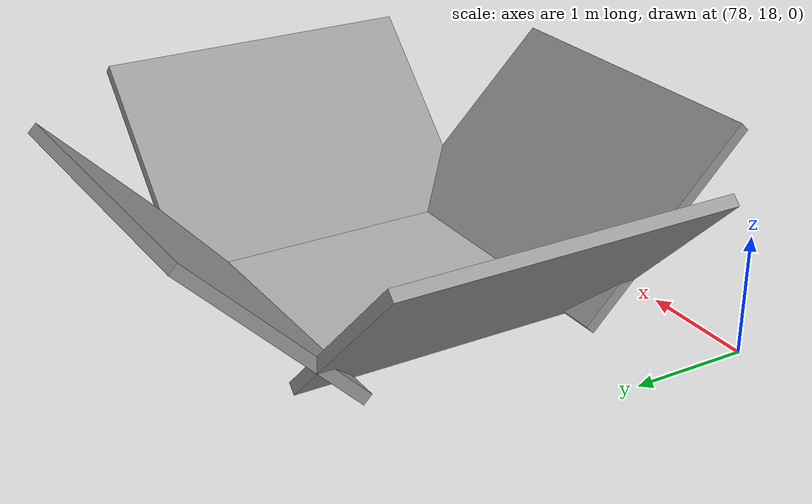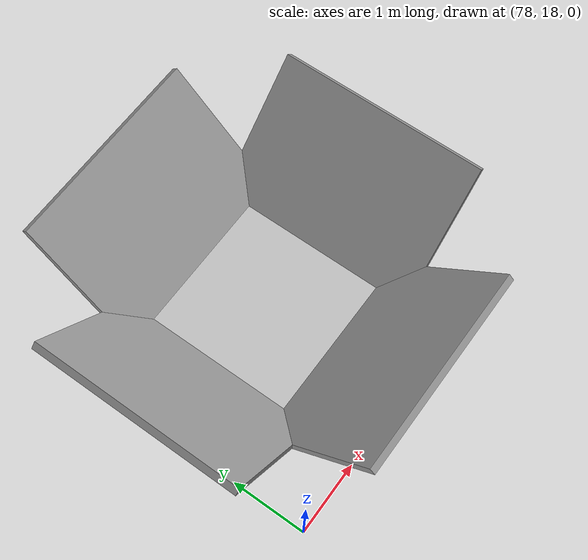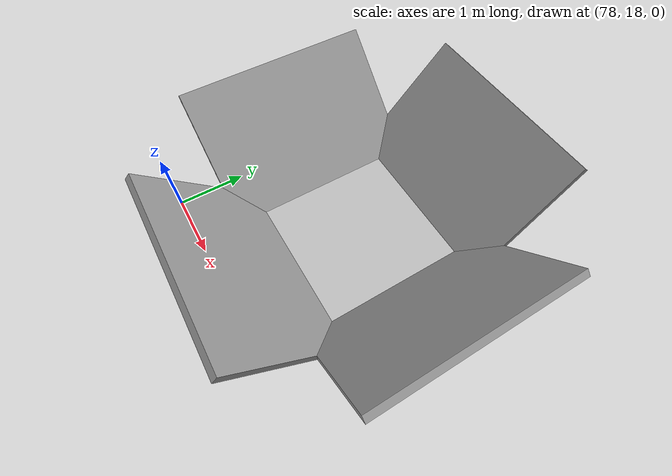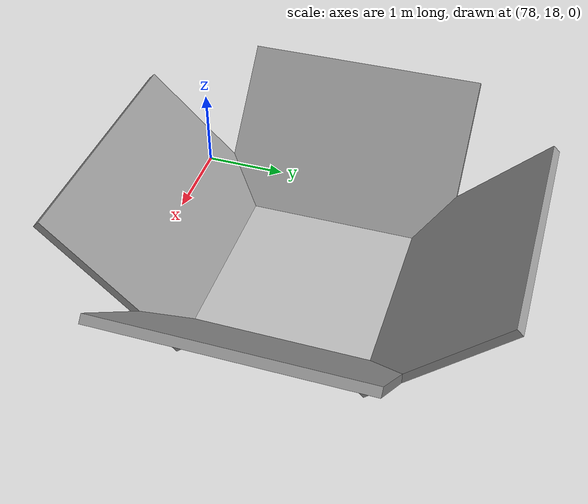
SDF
<sdf version="1.6">
 <world name="gokdogan_saha">
  <spherical_coordinates>
   <surface_model>EARTH_WGS84</surface_model>
   <latitude_deg>37.413534</latitude_deg>
   <longitude_deg>-121.996561</longitude_deg>
   <elevation>1.3</elevation>
  </spherical_coordinates>
  <scene>
   <sky><clouds><speed>12</speed></clouds></sky>
   <ambient>0.95 0.95 0.95 1</ambient>
   <background>0.3 0.3 0.3 1</background>
   <shadows>false</shadows>
  </scene>
  <include><uri>model://sun</uri></include>
  <physics type="ode">
   <ode>
    <solver><type>quick</type><iters>100</iters><sor>1.0</sor></solver>
    <constraints>
     <cfm>0.0</cfm>
     <erp>0.2</erp>
     <contact_max_correcting_vel>0.1</contact_max_correcting_vel>
     <contact_surface_layer>0.0</contact_surface_layer>
    </constraints>
   </ode>
   <real_time_update_rate>400</real_time_update_rate>
   <max_step_size>0.0025</max_step_size>
  </physics>
  <model name="takeoff_pad">
   <static>true</static>
   <pose>25 0 0.05 0 0 0</pose>
   <link name="link">
    <collision name="collision">
     <geometry><box><size>80 24 0.1</size></box></geometry>
     <surface><friction><ode><mu>1</mu><mu2>1</mu2></ode></friction></surface>
    </collision>
    <visual name="pad">
     <cast_shadows>false</cast_shadows>
     <geometry><box><size>80 24 0.1</size></box></geometry>
     <material><ambient>0.25 0.25 0.25 1</ambient><diffuse>0.3 0.3 0.3 1</diffuse></material>
    </visual>
   </link>
  </model>
  <include><uri>model://qr_ground_target</uri><pose>80 20 0.2 0 0 0</pose></include>
 </world>
</sdf>

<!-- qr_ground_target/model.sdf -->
<sdf version="1.6">
  <model name="qr_ground_target">
    <static>true</static>
    <link name="target">

      <!-- QR plakası: zeminde düz, üst yüzü yukarı bakar -->
      <visual name="qr_face">
        <pose>0 0 0.03 0 0 0</pose>
        <geometry><box><size>2.0 2.0 0.05</size></box></geometry>
        <material>
          <script>
            <uri>model://qr_plate/materials/scripts</uri>
            <uri>model://qr_plate/materials/textures</uri>
            <name>QrPlate/Diffuse</name>
          </script>
        </material>
      </visual>
      <collision name="qr_c">
        <pose>0 0 0.03 0 0 0</pose>
        <geometry><box><size>2.0 2.0 0.05</size></box></geometry>
      </collision>

      <!-- 4 engel: her biri 45° dışa doğru eğik, QR'ın kenarında (huni ağzı yukarı) -->
      <visual name="wall_yp">
        <pose>0 1.7 0.7 -0.785 0 0</pose>
        <geometry><box><size>2.8 0.1 2.0</size></box></geometry>
        <material><ambient>0.55 0.55 0.55 1</ambient><diffuse>0.6 0.6 0.6 1</diffuse></material>
      </visual>
      <visual name="wall_yn">
        <pose>0 -1.7 0.7 0.785 0 0</pose>
        <geometry><box><size>2.8 0.1 2.0</size></box></geometry>
        <material><ambient>0.55 0.55 0.55 1</ambient><diffuse>0.6 0.6 0.6 1</diffuse></material>
      </visual>
      <visual name="wall_xp">
        <pose>1.7 0 0.7 0 0.785 0</pose>
        <geometry><box><size>0.1 2.8 2.0</size></box></geometry>
        <material><ambient>0.55 0.55 0.55 1</ambient><diffuse>0.6 0.6 0.6 1</diffuse></material>
      </visual>
      <visual name="wall_xn">
        <pose>-1.7 0 0.7 0 -0.785 0</pose>
        <geometry><box><size>0.1 2.8 2.0</size></box></geometry>
        <material><ambient>0.55 0.55 0.55 1</ambient><diffuse>0.6 0.6 0.6 1</diffuse></material>
      </visual>

    </link>
  </model>
</sdf>
